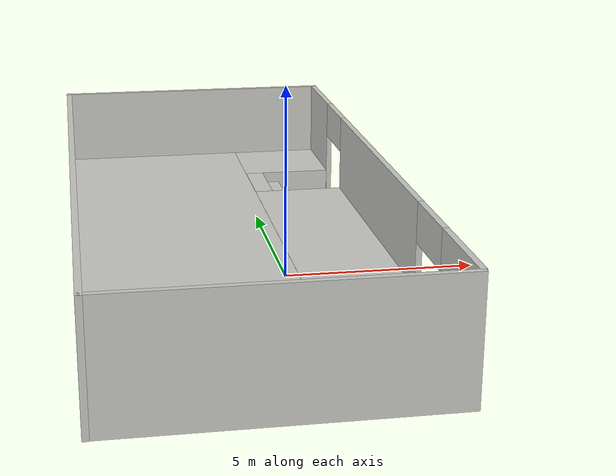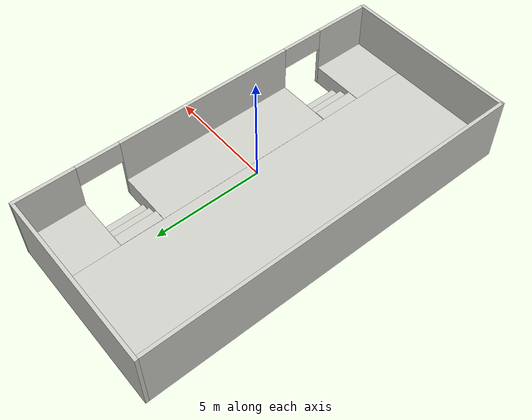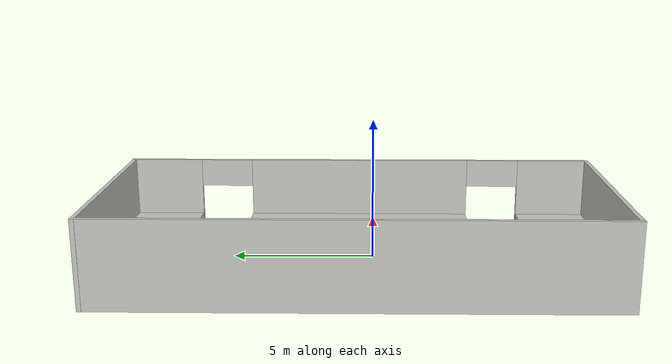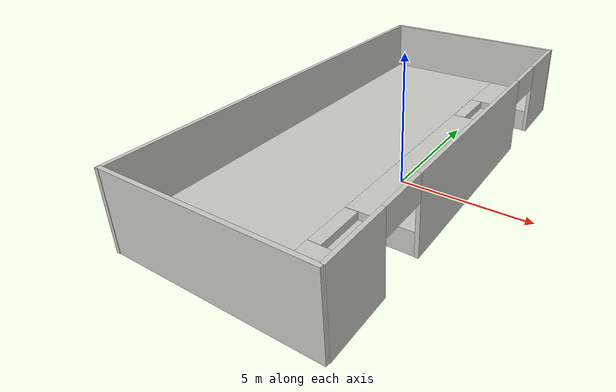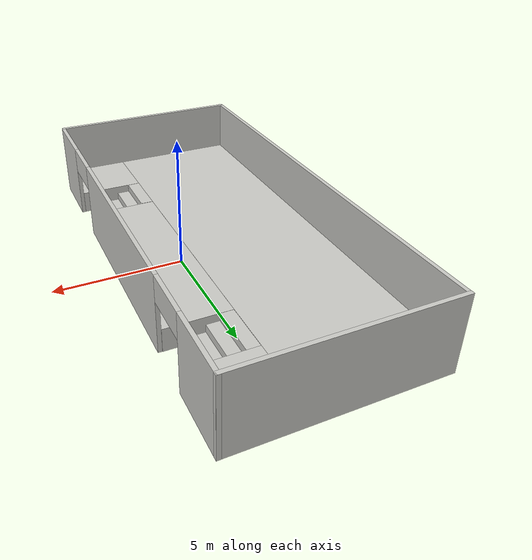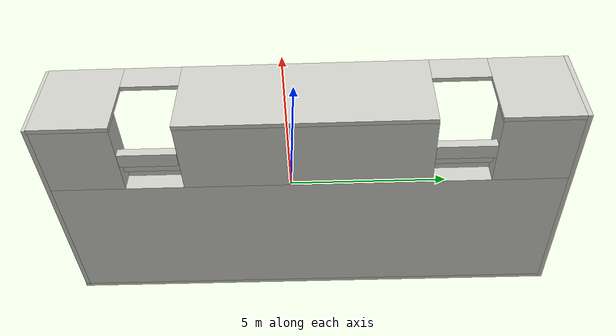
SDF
<?xml version='1.0'?>
<sdf version='1.7'>
  <model name='big_lab_final'>
    <pose>-1.399 0.513 0 0 -0 0</pose>
    <link name='Stairs_1'>
      <visual name='Stairs_1_Visual_0'>
        <pose>2.56912 -5.01602 0.15 0 -0 -1.5708</pose>
        <geometry>
          <box>
            <size>1.91 0.5 0.3</size>
          </box>
        </geometry>
        <material>
          <script>
            <uri>file://media/materials/scripts/gazebo.material</uri>
            <name>Gazebo/CeilingTiled</name>
          </script>
          <ambient>0.333333 0.341176 0.32549 1</ambient>
        </material>
        <meta>
          <layer>0</layer>
        </meta>
      </visual>
      <collision name='Stairs_1_Collision_0'>
        <geometry>
          <box>
            <size>1.91 0.5 0.3</size>
          </box>
        </geometry>
        <pose>2.56912 -5.01602 0.15 0 -0 -1.5708</pose>
      </collision>
      <visual name='Stairs_1_Visual_1'>
        <pose>2.06912 -5.01602 0.45 0 -0 -1.5708</pose>
        <geometry>
          <box>
            <size>1.91 0.5 0.3</size>
          </box>
        </geometry>
        <material>
          <script>
            <uri>file://media/materials/scripts/gazebo.material</uri>
            <name>Gazebo/CeilingTiled</name>
          </script>
          <ambient>0.333333 0.341176 0.32549 1</ambient>
        </material>
        <meta>
          <layer>0</layer>
        </meta>
      </visual>
      <collision name='Stairs_1_Collision_1'>
        <geometry>
          <box>
            <size>1.91 0.5 0.3</size>
          </box>
        </geometry>
        <pose>2.06912 -5.01602 0.45 0 -0 -1.5708</pose>
      </collision>
      <visual name='Stairs_1_Visual_2'>
        <pose>1.56912 -5.01602 0.75 0 -0 -1.5708</pose>
        <geometry>
          <box>
            <size>1.91 0.5 0.3</size>
          </box>
        </geometry>
        <material>
          <script>
            <uri>file://media/materials/scripts/gazebo.material</uri>
            <name>Gazebo/CeilingTiled</name>
          </script>
          <ambient>0.333333 0.341176 0.32549 1</ambient>
        </material>
        <meta>
          <layer>0</layer>
        </meta>
      </visual>
      <collision name='Stairs_1_Collision_2'>
        <geometry>
          <box>
            <size>1.91 0.5 0.3</size>
          </box>
        </geometry>
        <pose>1.56912 -5.01602 0.75 0 -0 -1.5708</pose>
      </collision>
    </link>
    <link name='Stairs_3'>
      <visual name='Stairs_3_Visual_0'>
        <pose>2.58039 5.06228 0.15 0 0 -1.5708</pose>
        <geometry>
          <box>
            <size>1.91 0.5 0.3</size>
          </box>
        </geometry>
        <material>
          <script>
            <uri>file://media/materials/scripts/gazebo.material</uri>
            <name>Gazebo/CeilingTiled</name>
          </script>
          <ambient>0.333333 0.341176 0.32549 1</ambient>
        </material>
        <meta>
          <layer>0</layer>
        </meta>
      </visual>
      <collision name='Stairs_3_Collision_0'>
        <geometry>
          <box>
            <size>1.91 0.5 0.3</size>
          </box>
        </geometry>
        <pose>2.58039 5.06228 0.15 0 0 -1.5708</pose>
      </collision>
      <visual name='Stairs_3_Visual_1'>
        <pose>2.08039 5.06228 0.45 0 0 -1.5708</pose>
        <geometry>
          <box>
            <size>1.91 0.5 0.3</size>
          </box>
        </geometry>
        <material>
          <script>
            <uri>file://media/materials/scripts/gazebo.material</uri>
            <name>Gazebo/CeilingTiled</name>
          </script>
          <ambient>0.333333 0.341176 0.32549 1</ambient>
        </material>
        <meta>
          <layer>0</layer>
        </meta>
      </visual>
      <collision name='Stairs_3_Collision_1'>
        <geometry>
          <box>
            <size>1.91 0.5 0.3</size>
          </box>
        </geometry>
        <pose>2.08039 5.06228 0.45 0 0 -1.5708</pose>
      </collision>
      <visual name='Stairs_3_Visual_2'>
        <pose>1.58039 5.06228 0.75 0 0 -1.5708</pose>
        <geometry>
          <box>
            <size>1.91 0.5 0.3</size>
          </box>
        </geometry>
        <material>
          <script>
            <uri>file://media/materials/scripts/gazebo.material</uri>
            <name>Gazebo/CeilingTiled</name>
          </script>
          <ambient>0.333333 0.341176 0.32549 1</ambient>
        </material>
        <meta>
          <layer>0</layer>
        </meta>
      </visual>
      <collision name='Stairs_3_Collision_2'>
        <geometry>
          <box>
            <size>1.91 0.5 0.3</size>
          </box>
        </geometry>
        <pose>1.58039 5.06228 0.75 0 0 -1.5708</pose>
      </collision>
    </link>
    <link name='Wall_0'>
      <collision name='Wall_0_Collision'>
        <geometry>
          <box>
            <size>17 5.15 0.9</size>
          </box>
        </geometry>
        <pose>0 0 0.45 0 -0 0</pose>
      </collision>
      <visual name='Wall_0_Visual'>
        <pose>0 0 0.45 0 -0 0</pose>
        <geometry>
          <box>
            <size>17 5.15 0.9</size>
          </box>
        </geometry>
        <material>
          <script>
            <uri>file://media/materials/scripts/gazebo.material</uri>
            <name>Gazebo/CeilingTiled</name>
          </script>
          <ambient>0.333333 0.341176 0.32549 1</ambient>
        </material>
        <meta>
          <layer>0</layer>
        </meta>
      </visual>
      <pose>-1.2516 0.017055 0 0 -0 -1.5708</pose>
    </link>
    <link name='Wall_11'>
      <collision name='Wall_11_Collision'>
        <geometry>
          <box>
            <size>7.875 0.15 3</size>
          </box>
        </geometry>
        <pose>0 0 1.5 0 -0 0</pose>
      </collision>
      <visual name='Wall_11_Visual'>
        <pose>0 0 1.5 0 -0 0</pose>
        <geometry>
          <box>
            <size>7.875 0.15 3</size>
          </box>
        </geometry>
        <material>
          <script>
            <uri>file://media/materials/scripts/gazebo.material</uri>
            <name>Gazebo/CeilingTiled</name>
          </script>
          <ambient>1 1 1 1</ambient>
        </material>
        <meta>
          <layer>0</layer>
        </meta>
      </visual>
      <pose>0.0055 -8.555 0 0 -0 0</pose>
    </link>
    <link name='Wall_13'>
      <collision name='Wall_13_Collision'>
        <geometry>
          <box>
            <size>7.95 0.15 3</size>
          </box>
        </geometry>
        <pose>0 0 1.5 0 -0 0</pose>
      </collision>
      <visual name='Wall_13_Visual'>
        <pose>0 0 1.5 0 -0 0</pose>
        <geometry>
          <box>
            <size>7.95 0.15 3</size>
          </box>
        </geometry>
        <material>
          <script>
            <uri>file://media/materials/scripts/gazebo.material</uri>
            <name>Gazebo/CeilingTiled</name>
          </script>
          <ambient>1 1 1 1</ambient>
        </material>
        <meta>
          <layer>0</layer>
        </meta>
      </visual>
      <pose>0 8.568 0 0 -0 3.14159</pose>
    </link>
    <link name='Wall_16'>
      <collision name='Wall_16_Collision'>
        <geometry>
          <box>
            <size>17.15 0.15 3</size>
          </box>
        </geometry>
        <pose>0 0 1.5 0 -0 0</pose>
      </collision>
      <visual name='Wall_16_Visual'>
        <pose>0 0 1.5 0 -0 0</pose>
        <geometry>
          <box>
            <size>17.15 0.15 3</size>
          </box>
        </geometry>
        <material>
          <script>
            <uri>file://media/materials/scripts/gazebo.material</uri>
            <name>Gazebo/CeilingTiled</name>
          </script>
          <ambient>1 1 1 1</ambient>
        </material>
        <meta>
          <layer>0</layer>
        </meta>
      </visual>
      <pose>-3.896 -0.07 0 0 -0 1.5708</pose>
    </link>
    <link name='Wall_18'>
      <pose>3.898 0.07 0 0 -0 -1.5708</pose>
      <visual name='Wall_18_Visual_0'>
        <pose>-7.25268 0 1.5 0 -0 0</pose>
        <geometry>
          <box>
            <size>2.64463 0.15 3</size>
          </box>
        </geometry>
        <material>
          <script>
            <uri>file://media/materials/scripts/gazebo.material</uri>
            <name>Gazebo/CeilingTiled</name>
          </script>
          <ambient>1 1 1 1</ambient>
        </material>
        <meta>
          <layer>0</layer>
        </meta>
      </visual>
      <collision name='Wall_18_Collision_0'>
        <geometry>
          <box>
            <size>2.64463 0.15 3</size>
          </box>
        </geometry>
        <pose>-7.25268 0 1.5 0 -0 0</pose>
      </collision>
      <visual name='Wall_18_Visual_1'>
        <pose>0.054632 0 1.5 0 -0 0</pose>
        <geometry>
          <box>
            <size>8.15 0.15 3</size>
          </box>
        </geometry>
        <material>
          <script>
            <uri>file://media/materials/scripts/gazebo.material</uri>
            <name>Gazebo/CeilingTiled</name>
          </script>
          <ambient>1 1 1 1</ambient>
        </material>
        <meta>
          <layer>0</layer>
        </meta>
      </visual>
      <collision name='Wall_18_Collision_1'>
        <geometry>
          <box>
            <size>8.15 0.15 3</size>
          </box>
        </geometry>
        <pose>0.054632 0 1.5 0 -0 0</pose>
      </collision>
      <visual name='Wall_18_Visual_2'>
        <pose>7.30732 0 1.5 0 -0 0</pose>
        <geometry>
          <box>
            <size>2.53537 0.15 3</size>
          </box>
        </geometry>
        <material>
          <script>
            <uri>file://media/materials/scripts/gazebo.material</uri>
            <name>Gazebo/CeilingTiled</name>
          </script>
          <ambient>1 1 1 1</ambient>
        </material>
        <meta>
          <layer>0</layer>
        </meta>
      </visual>
      <collision name='Wall_18_Collision_2'>
        <geometry>
          <box>
            <size>2.53537 0.15 3</size>
          </box>
        </geometry>
        <pose>7.30732 0 1.5 0 -0 0</pose>
      </collision>
      <visual name='Wall_18_Visual_3'>
        <pose>-4.97537 0 2.5 0 -0 0</pose>
        <geometry>
          <box>
            <size>1.91 0.15 1</size>
          </box>
        </geometry>
        <material>
          <script>
            <uri>file://media/materials/scripts/gazebo.material</uri>
            <name>Gazebo/CeilingTiled</name>
          </script>
          <ambient>1 1 1 1</ambient>
        </material>
        <meta>
          <layer>0</layer>
        </meta>
      </visual>
      <collision name='Wall_18_Collision_3'>
        <geometry>
          <box>
            <size>1.91 0.15 1</size>
          </box>
        </geometry>
        <pose>-4.97537 0 2.5 0 -0 0</pose>
      </collision>
      <visual name='Wall_18_Visual_4'>
        <pose>5.08463 0 2.5 0 -0 0</pose>
        <geometry>
          <box>
            <size>1.91 0.15 1</size>
          </box>
        </geometry>
        <material>
          <script>
            <uri>file://media/materials/scripts/gazebo.material</uri>
            <name>Gazebo/CeilingTiled</name>
          </script>
          <ambient>1 1 1 1</ambient>
        </material>
        <meta>
          <layer>0</layer>
        </meta>
      </visual>
      <collision name='Wall_18_Collision_4'>
        <geometry>
          <box>
            <size>1.91 0.15 1</size>
          </box>
        </geometry>
        <pose>5.08463 0 2.5 0 -0 0</pose>
      </collision>
    </link>
    <link name='Wall_2'>
      <collision name='Wall_2_Collision'>
        <geometry>
          <box>
            <size>2.51 2.5 0.9</size>
          </box>
        </geometry>
        <pose>0 0 0.45 0 -0 0</pose>
      </collision>
      <visual name='Wall_2_Visual'>
        <pose>0 0 0.45 0 -0 0</pose>
        <geometry>
          <box>
            <size>2.51 2.5 0.9</size>
          </box>
        </geometry>
        <material>
          <script>
            <uri>file://media/materials/scripts/gazebo.material</uri>
            <name>Gazebo/CeilingTiled</name>
          </script>
          <ambient>0.333333 0.341176 0.32549 1</ambient>
        </material>
        <meta>
          <layer>0</layer>
        </meta>
      </visual>
      <pose>2.575 -7.23 0 0 -0 0</pose>
    </link>
    <link name='Wall_4'>
      <collision name='Wall_4_Collision'>
        <geometry>
          <box>
            <size>2.51 2.5 0.9</size>
          </box>
        </geometry>
        <pose>0 0 0.45 0 -0 0</pose>
      </collision>
      <visual name='Wall_4_Visual'>
        <pose>0 0 0.45 0 -0 0</pose>
        <geometry>
          <box>
            <size>2.51 2.5 0.9</size>
          </box>
        </geometry>
        <material>
          <script>
            <uri>file://media/materials/scripts/gazebo.material</uri>
            <name>Gazebo/CeilingTiled</name>
          </script>
          <ambient>0.333333 0.341176 0.32549 1</ambient>
        </material>
        <meta>
          <layer>0</layer>
        </meta>
      </visual>
      <pose>2.573 7.2685 0 0 -0 3.14159</pose>
    </link>
    <link name='Wall_7'>
      <collision name='Wall_7_Collision'>
        <geometry>
          <box>
            <size>8.145 2.5 0.9</size>
          </box>
        </geometry>
        <pose>0 0 0.45 0 -0 0</pose>
      </collision>
      <visual name='Wall_7_Visual'>
        <pose>0 0 0.45 0 -0 0</pose>
        <geometry>
          <box>
            <size>8.145 2.5 0.9</size>
          </box>
        </geometry>
        <material>
          <script>
            <uri>file://media/materials/scripts/gazebo.material</uri>
            <name>Gazebo/CeilingTiled</name>
          </script>
          <ambient>0.333333 0.341176 0.32549 1</ambient>
        </material>
        <meta>
          <layer>0</layer>
        </meta>
      </visual>
      <pose>2.57459 0.029666 0 0 -0 -1.5708</pose>
    </link>
    <static>1</static>
  </model>
</sdf>
